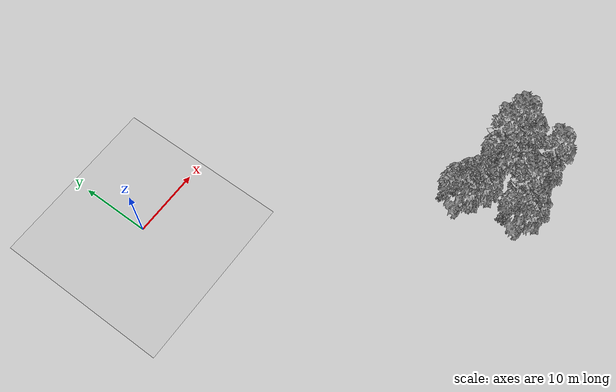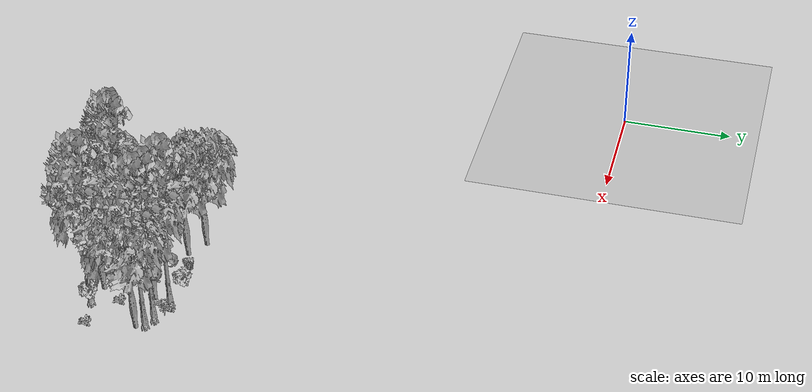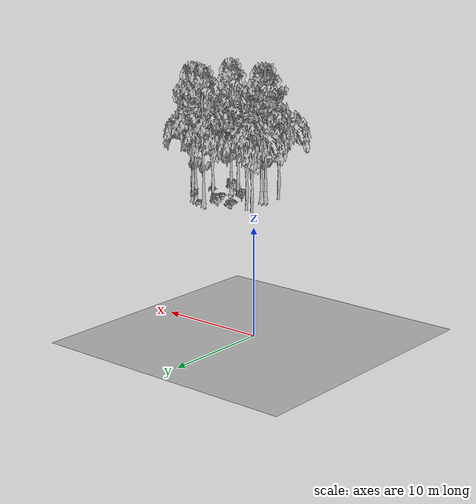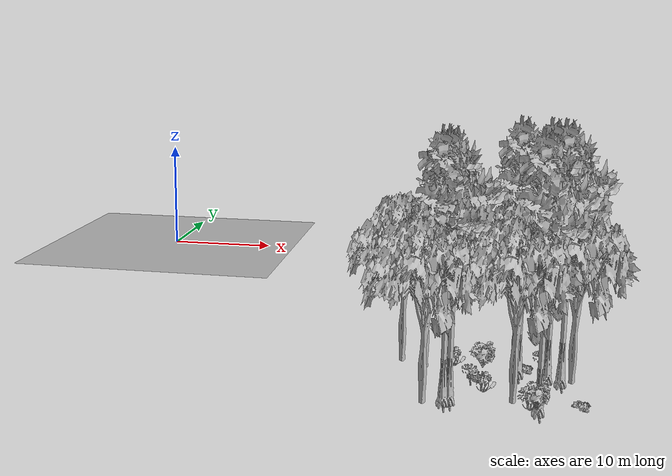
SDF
<sdf version="1.7">
 <world name="default">
  <model name="ground_plane">
   <static>1</static>
   <link name="link">
    <collision name="collision">
     <pose>-50 0 0 0 -0 0</pose>
     <geometry><plane><normal>0 0 1</normal><size>80 80</size></plane></geometry>
     <surface><contact><ode><min_depth>0.01</min_depth><max_vel>0</max_vel></ode></contact></surface>
    </collision>
    <visual name="grass">
     <cast_shadows>0</cast_shadows>
     <geometry>
      <mesh>
       <scale>0.46714285714285714 0.46714285714285714 0.1</scale>
       <uri>file://grass_plane/meshes/grass_plane.dae</uri>
      </mesh>
     </geometry>
    </visual>
   </link>
  </model>
  <model name="Tree 29">
   <static>1</static>
   <pose>26.77203034776636 -32.211569555746294 0 1.57079 -0 0</pose>
   <link name="link">
    <collision name="collision">
     <geometry><mesh><scale>3.5 5 3.5</scale><uri>model://tree_2/meshes/tree_2.obj</uri></mesh></geometry>
    </collision>
    <visual name="visual">
     <geometry><mesh><scale>3.5 5 3.5</scale><uri>model://tree_2/meshes/tree_2.obj</uri></mesh></geometry>
    </visual>
   </link>
  </model>
  <model name="Tree 39">
   <static>1</static>
   <pose>30.05715948808283 -38.73998368811889 0 1.57079 -0 0</pose>
   <link name="link">
    <collision name="collision">
     <geometry><mesh><scale>3.5 5 3.5</scale><uri>model://tree_9/meshes/tree_9.obj</uri></mesh></geometry>
    </collision>
    <visual name="visual">
     <geometry><mesh><scale>3.5 5 3.5</scale><uri>model://tree_9/meshes/tree_9.obj</uri></mesh></geometry>
    </visual>
   </link>
  </model>
  <model name="Tree 108">
   <static>1</static>
   <pose>34.50629854699348 -33.96545221413355 0 1.57079 -0 0</pose>
   <link name="link">
    <collision name="collision">
     <geometry><mesh><scale>3.5 5 3.5</scale><uri>model://tree_2/meshes/tree_2.obj</uri></mesh></geometry>
    </collision>
    <visual name="visual">
     <geometry><mesh><scale>3.5 5 3.5</scale><uri>model://tree_2/meshes/tree_2.obj</uri></mesh></geometry>
    </visual>
   </link>
  </model>
  <model name="Tree 156">
   <static>1</static>
   <pose>28.454944901625282 -33.275641298786084 0 1.57079 -0 0</pose>
   <link name="link">
    <collision name="collision">
     <geometry><mesh><scale>3.5 5 3.5</scale><uri>model://tree_2/meshes/tree_2.obj</uri></mesh></geometry>
    </collision>
    <visual name="visual">
     <geometry><mesh><scale>3.5 5 3.5</scale><uri>model://tree_2/meshes/tree_2.obj</uri></mesh></geometry>
    </visual>
   </link>
  </model>
  <model name="Tree 303">
   <static>1</static>
   <pose>36.72949182830392 -33.232550064421744 0 1.57079 -0 0</pose>
   <link name="link">
    <collision name="collision">
     <geometry><mesh><scale>3.5 5 3.5</scale><uri>model://tree_9/meshes/tree_9.obj</uri></mesh></geometry>
    </collision>
    <visual name="visual">
     <geometry><mesh><scale>3.5 5 3.5</scale><uri>model://tree_9/meshes/tree_9.obj</uri></mesh></geometry>
    </visual>
   </link>
  </model>
  <model name="Tree 322">
   <static>1</static>
   <pose>30.444209766359975 -38.428777839125424 0 1.57079 -0 0</pose>
   <link name="link">
    <collision name="collision">
     <geometry><mesh><scale>3.5 5 3.5</scale><uri>model://tree_9/meshes/tree_9.obj</uri></mesh></geometry>
    </collision>
    <visual name="visual">
     <geometry><mesh><scale>3.5 5 3.5</scale><uri>model://tree_9/meshes/tree_9.obj</uri></mesh></geometry>
    </visual>
   </link>
  </model>
  <model name="Tree 326">
   <static>1</static>
   <pose>28.7582907778812 -39.85675396782332 0 1.57079 -0 0</pose>
   <link name="link">
    <collision name="collision">
     <geometry><mesh><scale>3.5 5 3.5</scale><uri>model://tree_2/meshes/tree_2.obj</uri></mesh></geometry>
    </collision>
    <visual name="visual">
     <geometry><mesh><scale>3.5 5 3.5</scale><uri>model://tree_2/meshes/tree_2.obj</uri></mesh></geometry>
    </visual>
   </link>
  </model>
  <model name="Tree 397">
   <static>1</static>
   <pose>38.19061578947621 -34.23996186395385 0 1.57079 -0 0</pose>
   <link name="link">
    <collision name="collision">
     <geometry><mesh><scale>3.5 5 3.5</scale><uri>model://tree_2/meshes/tree_2.obj</uri></mesh></geometry>
    </collision>
    <visual name="visual">
     <geometry><mesh><scale>3.5 5 3.5</scale><uri>model://tree_2/meshes/tree_2.obj</uri></mesh></geometry>
    </visual>
   </link>
  </model>
  <model name="Tree 416">
   <static>1</static>
   <pose>34.816460264100925 -32.52709856255724 0 1.57079 -0 0</pose>
   <link name="link">
    <collision name="collision">
     <geometry><mesh><scale>3.5 5 3.5</scale><uri>model://tree_9/meshes/tree_9.obj</uri></mesh></geometry>
    </collision>
    <visual name="visual">
     <geometry><mesh><scale>3.5 5 3.5</scale><uri>model://tree_9/meshes/tree_9.obj</uri></mesh></geometry>
    </visual>
   </link>
  </model>
  <model name="Tree 510">
   <static>1</static>
   <pose>37.60805976560134 -33.701666965173935 0 1.57079 -0 0</pose>
   <link name="link">
    <collision name="collision">
     <geometry><mesh><scale>3.5 5 3.5</scale><uri>model://tree_9/meshes/tree_9.obj</uri></mesh></geometry>
    </collision>
    <visual name="visual">
     <geometry><mesh><scale>3.5 5 3.5</scale><uri>model://tree_9/meshes/tree_9.obj</uri></mesh></geometry>
    </visual>
   </link>
  </model>
  <model name="Tree 565">
   <static>1</static>
   <pose>36.010652698938415 -39.169244279151194 0 1.57079 -0 0</pose>
   <link name="link">
    <collision name="collision">
     <geometry><mesh><scale>3.5 5 3.5</scale><uri>model://tree_9/meshes/tree_9.obj</uri></mesh></geometry>
    </collision>
    <visual name="visual">
     <geometry><mesh><scale>3.5 5 3.5</scale><uri>model://tree_9/meshes/tree_9.obj</uri></mesh></geometry>
    </visual>
   </link>
  </model>
  <model name="Tree 586">
   <static>1</static>
   <pose>34.347143984428854 -38.61279041546064 0 1.57079 -0 0</pose>
   <link name="link">
    <collision name="collision">
     <geometry><mesh><scale>3.5 5 3.5</scale><uri>model://tree_2/meshes/tree_2.obj</uri></mesh></geometry>
    </collision>
    <visual name="visual">
     <geometry><mesh><scale>3.5 5 3.5</scale><uri>model://tree_2/meshes/tree_2.obj</uri></mesh></geometry>
    </visual>
   </link>
  </model>
  <model name="Bush 39">
   <static>1</static>
   <pose>36.35818626724631 -32.42621230510329 0 1.57079 -0 0</pose>
   <link name="link">
    <collision name="collision">
     <geometry><mesh><scale>2 2 2</scale><uri>model://bush_5/meshes/bush_5.obj</uri></mesh></geometry>
     <surface><contact><collide_without_contact>false</collide_without_contact></contact></surface>
    </collision>
    <visual name="visual">
     <geometry><mesh><scale>2 2 2</scale><uri>model://bush_5/meshes/bush_5.obj</uri></mesh></geometry>
    </visual>
   </link>
  </model>
  <model name="Bush 109">
   <static>1</static>
   <pose>35.45918448792001 -36.80844459857003 0 1.57079 -0 0</pose>
   <link name="link">
    <collision name="collision">
     <geometry><mesh><scale>2 2 2</scale><uri>model://bush_2/meshes/bush_2.obj</uri></mesh></geometry>
     <surface><contact><collide_without_contact>false</collide_without_contact></contact></surface>
    </collision>
    <visual name="visual">
     <geometry><mesh><scale>2 2 2</scale><uri>model://bush_2/meshes/bush_2.obj</uri></mesh></geometry>
    </visual>
   </link>
  </model>
  <model name="Bush 220">
   <static>1</static>
   <pose>31.75325293864742 -36.15966174461792 0 1.57079 -0 0</pose>
   <link name="link">
    <collision name="collision">
     <geometry><mesh><scale>2 2 2</scale><uri>model://bush_5/meshes/bush_5.obj</uri></mesh></geometry>
     <surface><contact><collide_without_contact>false</collide_without_contact></contact></surface>
    </collision>
    <visual name="visual">
     <geometry><mesh><scale>2 2 2</scale><uri>model://bush_5/meshes/bush_5.obj</uri></mesh></geometry>
    </visual>
   </link>
  </model>
  <model name="Bush 248">
   <static>1</static>
   <pose>35.29872166852287 -32.43691856439122 0 1.57079 -0 0</pose>
   <link name="link">
    <collision name="collision">
     <geometry><mesh><scale>2 2 2</scale><uri>model://bush_2/meshes/bush_2.obj</uri></mesh></geometry>
     <surface><contact><collide_without_contact>false</collide_without_contact></contact></surface>
    </collision>
    <visual name="visual">
     <geometry><mesh><scale>2 2 2</scale><uri>model://bush_2/meshes/bush_2.obj</uri></mesh></geometry>
    </visual>
   </link>
  </model>
  <model name="Bush 260">
   <static>1</static>
   <pose>38.61929694539607 -38.58238822568488 0 1.57079 -0 0</pose>
   <link name="link">
    <collision name="collision">
     <geometry><mesh><scale>2 2 2</scale><uri>model://bush_2/meshes/bush_2.obj</uri></mesh></geometry>
     <surface><contact><collide_without_contact>false</collide_without_contact></contact></surface>
    </collision>
    <visual name="visual">
     <geometry><mesh><scale>2 2 2</scale><uri>model://bush_2/meshes/bush_2.obj</uri></mesh></geometry>
    </visual>
   </link>
  </model>
  <model name="Bush 265">
   <static>1</static>
   <pose>35.87569840868338 -39.48547136512097 0 1.57079 -0 0</pose>
   <link name="link">
    <collision name="collision">
     <geometry><mesh><scale>2 2 2</scale><uri>model://bush_1/meshes/bush_1.obj</uri></mesh></geometry>
     <surface><contact><collide_without_contact>false</collide_without_contact></contact></surface>
    </collision>
    <visual name="visual">
     <geometry><mesh><scale>2 2 2</scale><uri>model://bush_1/meshes/bush_1.obj</uri></mesh></geometry>
    </visual>
   </link>
  </model>
  <model name="Bush 348">
   <static>1</static>
   <pose>30.475930616246657 -32.49945253714559 0 1.57079 -0 0</pose>
   <link name="link">
    <collision name="collision">
     <geometry><mesh><scale>2 2 2</scale><uri>model://bush_4/meshes/bush_4.obj</uri></mesh></geometry>
     <surface><contact><collide_without_contact>false</collide_without_contact></contact></surface>
    </collision>
    <visual name="visual">
     <geometry><mesh><scale>2 2 2</scale><uri>model://bush_4/meshes/bush_4.obj</uri></mesh></geometry>
    </visual>
   </link>
  </model>
  <model name="Bush 381">
   <static>1</static>
   <pose>32.45674125440601 -32.44603500484623 0 1.57079 -0 0</pose>
   <link name="link">
    <collision name="collision">
     <geometry><mesh><scale>2 2 2</scale><uri>model://bush_1/meshes/bush_1.obj</uri></mesh></geometry>
     <surface><contact><collide_without_contact>false</collide_without_contact></contact></surface>
    </collision>
    <visual name="visual">
     <geometry><mesh><scale>2 2 2</scale><uri>model://bush_1/meshes/bush_1.obj</uri></mesh></geometry>
    </visual>
   </link>
  </model>
  <model name="Bush 508">
   <static>1</static>
   <pose>32.588609105906386 -37.11928416378561 0 1.57079 -0 0</pose>
   <link name="link">
    <collision name="collision">
     <geometry><mesh><scale>2 2 2</scale><uri>model://bush_4/meshes/bush_4.obj</uri></mesh></geometry>
     <surface><contact><collide_without_contact>false</collide_without_contact></contact></surface>
    </collision>
    <visual name="visual">
     <geometry><mesh><scale>2 2 2</scale><uri>model://bush_4/meshes/bush_4.obj</uri></mesh></geometry>
    </visual>
   </link>
  </model>
  <model name="Bush 531">
   <static>1</static>
   <pose>35.46365366313495 -39.62882760488678 0 1.57079 -0 0</pose>
   <link name="link">
    <collision name="collision">
     <geometry><mesh><scale>2 2 2</scale><uri>model://bush_4/meshes/bush_4.obj</uri></mesh></geometry>
     <surface><contact><collide_without_contact>false</collide_without_contact></contact></surface>
    </collision>
    <visual name="visual">
     <geometry><mesh><scale>2 2 2</scale><uri>model://bush_4/meshes/bush_4.obj</uri></mesh></geometry>
    </visual>
   </link>
  </model>
  <model name="Bush 591">
   <static>1</static>
   <pose>32.06657401550618 -34.950418809720134 0 1.57079 -0 0</pose>
   <link name="link">
    <collision name="collision">
     <geometry><mesh><scale>2 2 2</scale><uri>model://bush_2/meshes/bush_2.obj</uri></mesh></geometry>
     <surface><contact><collide_without_contact>false</collide_without_contact></contact></surface>
    </collision>
    <visual name="visual">
     <geometry><mesh><scale>2 2 2</scale><uri>model://bush_2/meshes/bush_2.obj</uri></mesh></geometry>
    </visual>
   </link>
  </model>
 </world>
</sdf>
